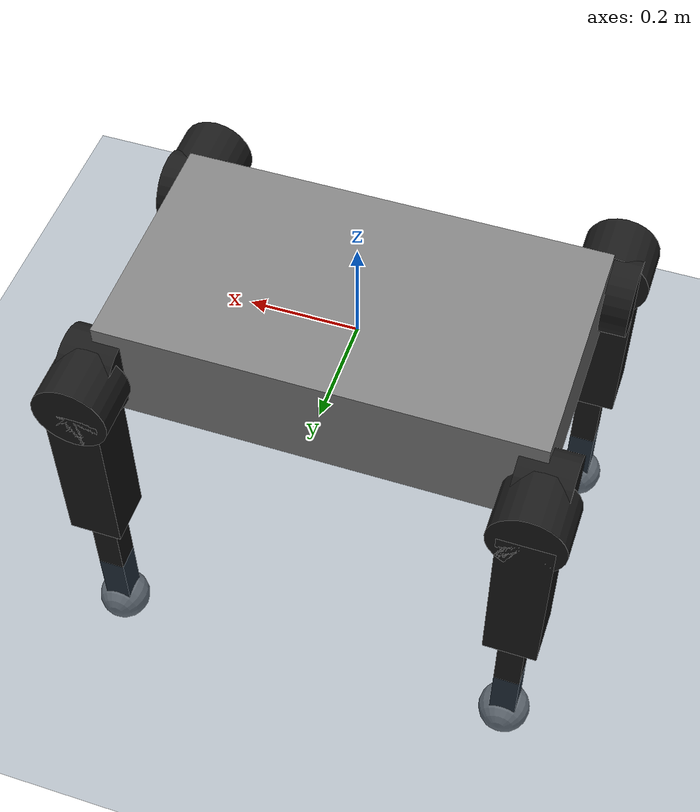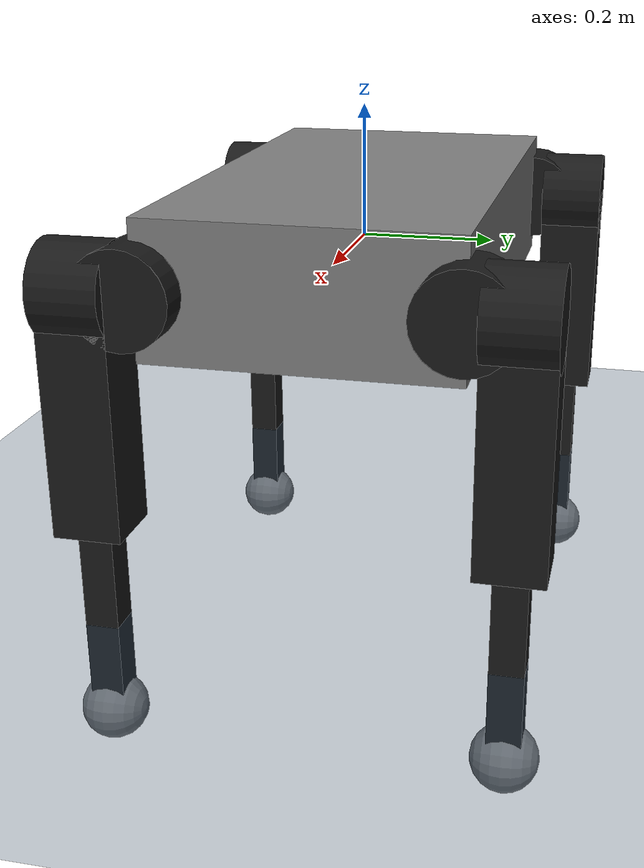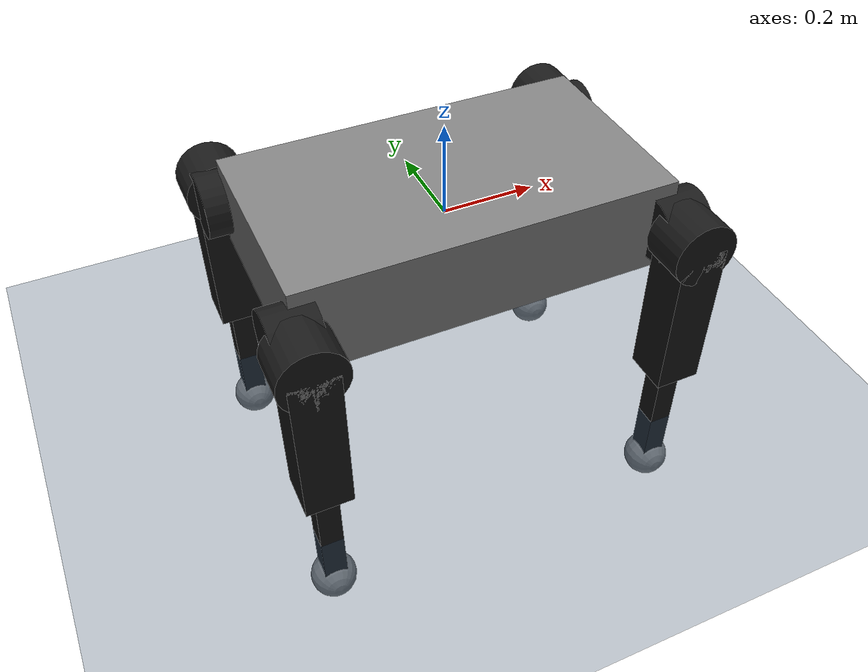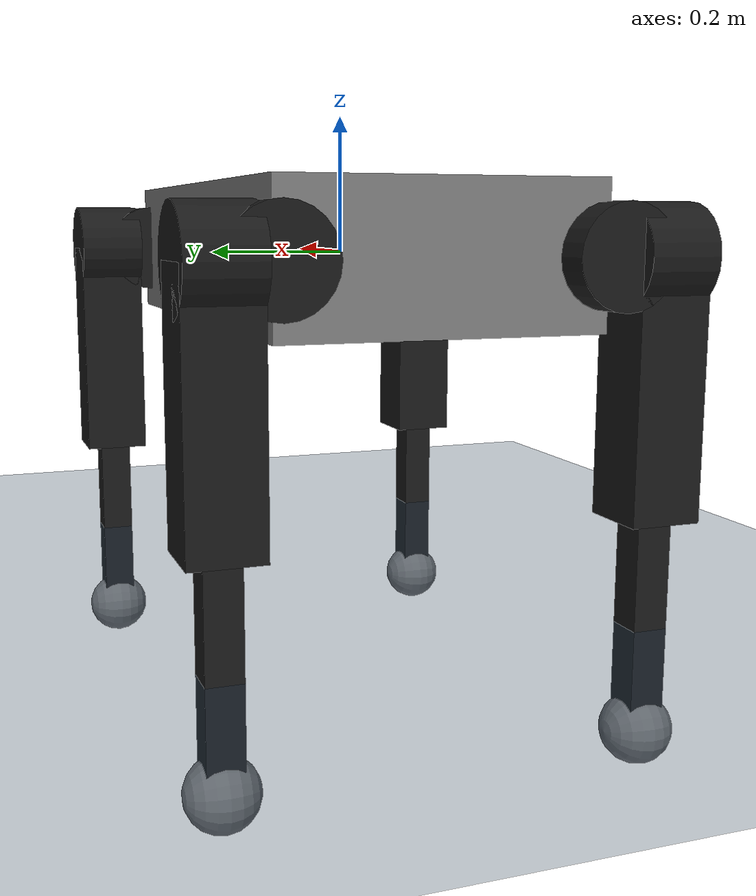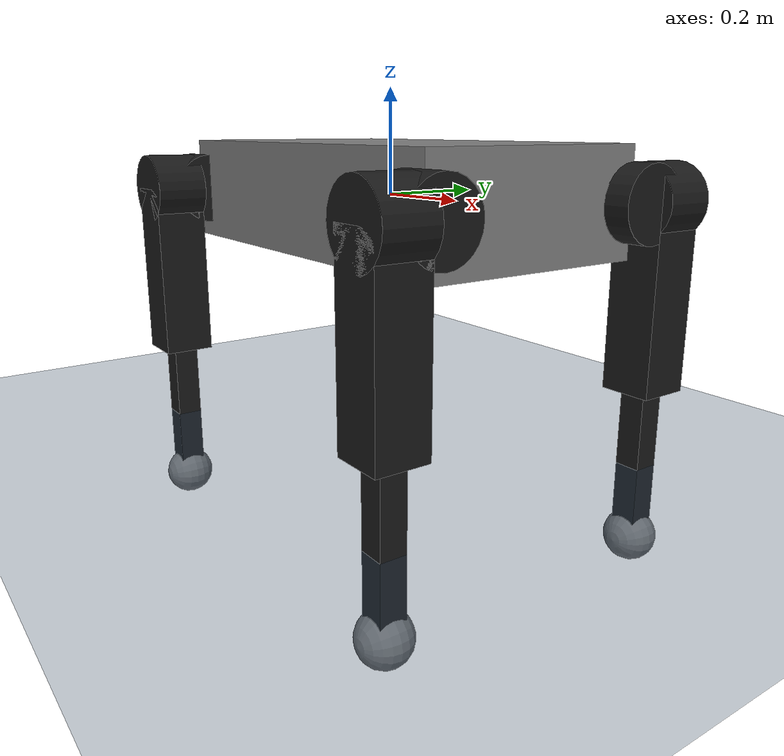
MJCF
<?xml version="1.0" encoding="UTF-8"?>
<mujoco>
  <include file="../scene.xml" />
  <include file="kyon_lower_body.xml" />
  <actuator>
    <position name="hip_roll_1" joint="hip_roll_1" ctrlrange="-2.03 2.51" />
    <position name="hip_pitch_1" joint="hip_pitch_1" ctrlrange="-2.4056 2.4056" />
    <position name="knee_pitch_1" joint="knee_pitch_1" ctrlrange="-2.4056 2.4056" />
    <position name="hip_roll_2" joint="hip_roll_2" ctrlrange="-2.51 2.03" />
    <position name="hip_pitch_2" joint="hip_pitch_2" ctrlrange="-2.3266 2.3266" />
    <position name="knee_pitch_2" joint="knee_pitch_2" ctrlrange="-2.3266 2.3266" />
    <position name="hip_roll_3" joint="hip_roll_3" ctrlrange="-2.51 2.03" />
    <position name="hip_pitch_3" joint="hip_pitch_3" ctrlrange="-2.4696 2.4696" />
    <position name="knee_pitch_3" joint="knee_pitch_3" ctrlrange="-2.4696 2.4696" />
    <position name="hip_roll_4" joint="hip_roll_4" ctrlrange="-2.03 2.51" />
    <position name="hip_pitch_4" joint="hip_pitch_4" ctrlrange="-2.3426 2.3426" />
    <position name="knee_pitch_4" joint="knee_pitch_4" ctrlrange="-2.3426 2.3426" />
  </actuator>
</mujoco>

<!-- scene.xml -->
<!--
    @author siddharth deore
    @email siddharth.deore@iit.it
-->
<mujoco model="scene">
  <visual>
    <headlight diffuse="0.6 0.6 0.6" ambient="0.3 0.3 0.3" specular="0 0 0" />
    <rgba haze="0.15 0.25 0.35 1" />
    <global azimuth="120" elevation="-20" />
  </visual>
  <asset>
    <texture type="skybox" builtin="gradient" rgb1="0.3 0.5 0.7" rgb2="0 0 0" width="512" height="3072" />
    <texture type="2d" name="groundplane" builtin="checker" mark="edge" rgb1="0.2 0.3 0.4" rgb2="0.1 0.2 0.3" markrgb="0.8 0.8 0.8" width="300" height="300" />
    <material name="groundplane" texture="groundplane" texuniform="true" texrepeat="5 5" reflectance="0.2" />
  </asset>
  <worldbody>
    <light pos="0 0 1.5" dir="0 0 -1" directional="true" />
    <geom name="floor" type="plane" conaffinity="1" condim="3" contype="1" material="groundplane" pos="0 0 -0.5" size="0 0 1" />
  </worldbody>
</mujoco>

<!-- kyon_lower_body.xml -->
<!--
    Kyon MJCF
    @author siddharth deore
    @email siddharth.deore@iit.it
-->
<mujoco model="kyon_lower_body">
  <compiler angle="radian" autolimits="true" />
  <option cone="elliptic" impratio="100" />
  <default>
    <joint damping="50" armature="0.01" frictionloss="0.2" />
    <position kp="1000" forcerange="-150.5 150.5" />
  </default>
  <statistic meansize="0.177182" extent="1.68124" center="0 0 0.140619" />
  <worldbody>
    <body name="pelvis">
      <inertial pos="0 0 0" quat="0 0.707107 0 0.707107" mass="14" diaginertia="0.982917 0.793333 0.282917" />
      <joint name="root_joint" type="free" damping="0" frictionloss="0" />
      <geom size="0.4 0.225 0.1" type="box" />
      <body name="hip_roll_motor_1" pos="0.4 0.225 0" quat="0.707107 0 0.707107 0">
        <inertial pos="0 0.0466667 0" quat="0.5 0.5 -0.5 0.5" mass="5.4" diaginertia="0.0119213 0.011561 0.00640167" />
        <joint name="hip_roll_1" pos="0 0 0" axis="0 0 1" range="-2.03 2.51" />
        <geom size="0.07 0.05" type="cylinder" rgba="0.1 0.1 0.1 1" />
        <geom size="0.07 0.05" pos="0 0.07 0" quat="0.707107 -0.707107 0 0" type="cylinder" rgba="0.1 0.1 0.1 1" />
        <geom size="0.07 0.05" pos="0 0.07 0" quat="0.707107 -0.707107 0 0" type="cylinder" rgba="0.1 0.1 0.1 1" />
        <body name="upper_leg_1" pos="0 0.07 0" quat="0.707107 -0.707107 0 0">
          <inertial pos="0.175 0 0" quat="0.5 0.5 0.5 0.5" mass="2" diaginertia="0.0220833 0.0220833 0.00333333" />
          <joint name="hip_pitch_1" pos="0 0 0" axis="0 0 1" range="-2.4056 2.4056" />
          <geom size="0.175 0.05 0.05" pos="0.175 0 0" type="box" rgba="0.1 0.1 0.1 1" />
          <body name="lower_leg_1" pos="0.35 0 0">
            <inertial pos="0.163636 0 0" quat="0.5 0.5 0.5 0.5" mass="1.1" diaginertia="0.00992045 0.00992045 0.000583333" />
            <joint name="knee_pitch_1" pos="0 0 0" axis="0 0 1" range="-2.4056 2.4056" />
            <geom size="0.15 0.025 0.025" pos="0.15 0 0" type="box" rgba="0.1 0.1 0.1 1" />
            <geom size="0.05" pos="0.3 0 0" />
          </body>
        </body>
      </body>
      <body name="hip_roll_motor_2" pos="0.4 -0.225 0" quat="0.707107 0 0.707107 0">
        <inertial pos="0 -0.0466667 0" quat="0.5 0.5 -0.5 0.5" mass="5.4" diaginertia="0.0119213 0.011561 0.00640167" />
        <joint name="hip_roll_2" pos="0 0 0" axis="0 0 1" range="-2.51 2.03" />
        <geom size="0.07 0.05" type="cylinder" rgba="0.1 0.1 0.1 1" />
        <geom size="0.07 0.05" pos="0 -0.07 0" quat="0.707107 -0.707107 0 0" type="cylinder" rgba="0.1 0.1 0.1 1" />
        <geom size="0.07 0.05" pos="0 -0.07 0" quat="0.707107 -0.707107 0 0" type="cylinder" rgba="0.1 0.1 0.1 1" />
        <body name="upper_leg_2" pos="0 -0.07 0" quat="0.707107 -0.707107 0 0">
          <inertial pos="0.175 0 0" quat="0.5 0.5 0.5 0.5" mass="2" diaginertia="0.0220833 0.0220833 0.00333333" />
          <joint name="hip_pitch_2" pos="0 0 0" axis="0 0 1" range="-2.3266 2.3266" />
          <geom size="0.175 0.05 0.05" pos="0.175 0 0" type="box" rgba="0.1 0.1 0.1 1" />
          <body name="lower_leg_2" pos="0.35 0 0">
            <inertial pos="0.163636 0 0" quat="0.5 0.5 0.5 0.5" mass="1.1" diaginertia="0.00992045 0.00992045 0.000583333" />
            <joint name="knee_pitch_2" pos="0 0 0" axis="0 0 1" range="-2.3266 2.3266" />
            <geom size="0.15 0.025 0.025" pos="0.15 0 0" type="box" rgba="0.1 0.1 0.1 1" />
            <geom size="0.05" pos="0.3 0 0" />
          </body>
        </body>
      </body>
      <body name="hip_roll_motor_3" pos="-0.4 0.225 0" quat="0.707107 0 0.707107 0">
        <inertial pos="0 0.0466667 0" quat="0.5 0.5 -0.5 0.5" mass="5.4" diaginertia="0.0119213 0.011561 0.00640167" />
        <joint name="hip_roll_3" pos="0 0 0" axis="0 0 1" range="-2.51 2.03" />
        <geom size="0.07 0.05" type="cylinder" rgba="0.1 0.1 0.1 1" />
        <geom size="0.07 0.05" pos="0 0.07 0" quat="0.707107 -0.707107 0 0" type="cylinder" rgba="0.1 0.1 0.1 1" />
        <geom size="0.07 0.05" pos="0 0.07 0" quat="0.707107 -0.707107 0 0" type="cylinder" rgba="0.1 0.1 0.1 1" />
        <body name="upper_leg_3" pos="0 0.07 0" quat="0.707107 -0.707107 0 0">
          <inertial pos="0.175 0 0" quat="0.5 0.5 0.5 0.5" mass="2" diaginertia="0.0220833 0.0220833 0.00333333" />
          <joint name="hip_pitch_3" pos="0 0 0" axis="0 0 1" range="-2.4696 2.4696" />
          <geom size="0.175 0.05 0.05" pos="0.175 0 0" type="box" rgba="0.1 0.1 0.1 1" />
          <body name="lower_leg_3" pos="0.35 0 0">
            <inertial pos="0.163636 0 0" quat="0.5 0.5 0.5 0.5" mass="1.1" diaginertia="0.00992045 0.00992045 0.000583333" />
            <joint name="knee_pitch_3" pos="0 0 0" axis="0 0 1" range="-2.4696 2.4696" />
            <geom size="0.15 0.025 0.025" pos="0.15 0 0" type="box" rgba="0.1 0.1 0.1 1" />
            <geom size="0.05" pos="0.3 0 0" />
          </body>
        </body>
      </body>
      <body name="hip_roll_motor_4" pos="-0.4 -0.225 0" quat="0.707107 0 0.707107 0">
        <inertial pos="0 -0.0466667 0" quat="0.5 0.5 -0.5 0.5" mass="5.4" diaginertia="0.0119213 0.011561 0.00640167" />
        <joint name="hip_roll_4" pos="0 0 0" axis="0 0 1" range="-2.03 2.51" />
        <geom size="0.07 0.05" type="cylinder" rgba="0.1 0.1 0.1 1" />
        <geom size="0.07 0.05" pos="0 -0.07 0" quat="0.707107 -0.707107 0 0" type="cylinder" rgba="0.1 0.1 0.1 1" />
        <geom size="0.07 0.05" pos="0 -0.07 0" quat="0.707107 -0.707107 0 0" type="cylinder" rgba="0.1 0.1 0.1 1" />
        <body name="upper_leg_4" pos="0 -0.07 0" quat="0.707107 -0.707107 0 0">
          <inertial pos="0.175 0 0" quat="0.5 0.5 0.5 0.5" mass="2" diaginertia="0.0220833 0.0220833 0.00333333" />
          <joint name="hip_pitch_4" pos="0 0 0" axis="0 0 1" range="-2.3426 2.3426" />
          <geom size="0.175 0.05 0.05" pos="0.175 0 0" type="box" rgba="0.1 0.1 0.1 1" />
          <body name="lower_leg_4" pos="0.35 0 0">
            <inertial pos="0.163636 0 0" quat="0.5 0.5 0.5 0.5" mass="1.1" diaginertia="0.00992045 0.00992045 0.000583333" />
            <joint name="knee_pitch_4" pos="0 0 0" axis="0 0 1" range="-2.3426 2.3426" />
            <geom size="0.15 0.025 0.025" pos="0.15 0 0" type="box" rgba="0.1 0.1 0.1 1" />
            <geom size="0.05" pos="0.3 0 0" />
          </body>
        </body>
      </body>
    </body>
  </worldbody>
  <contact>
    <exclude body1="pelvis" body2="upper_leg_1" />
    <exclude body1="pelvis" body2="upper_leg_2" />
    <exclude body1="pelvis" body2="upper_leg_3" />
    <exclude body1="pelvis" body2="upper_leg_4" />
  </contact>
  <keyframe>
    <key qpos="0 0 -0.027 1 0 0 0 0 0.8 -1.7 0 0.8 -1.7 0 0.8 -1.7 0 0.8 -1.7" />
  </keyframe>
</mujoco>
